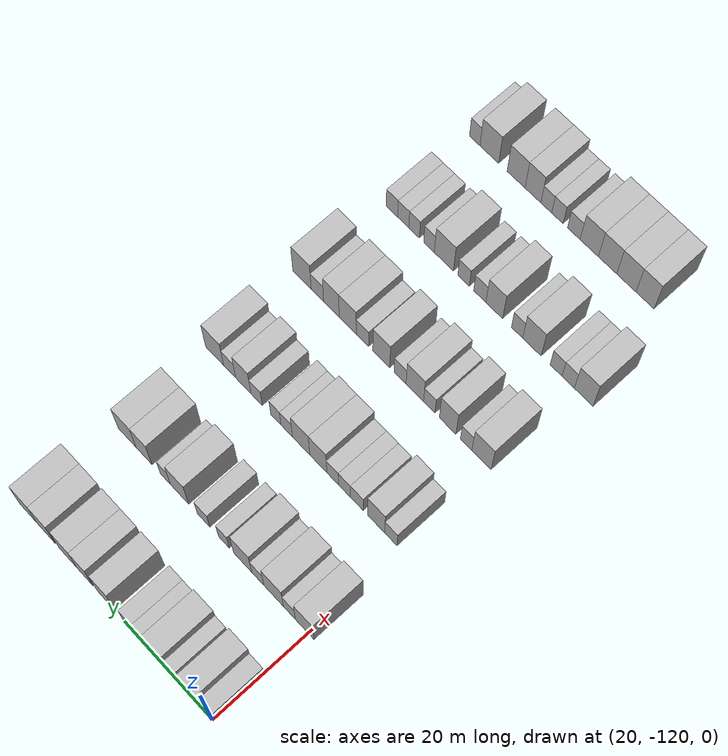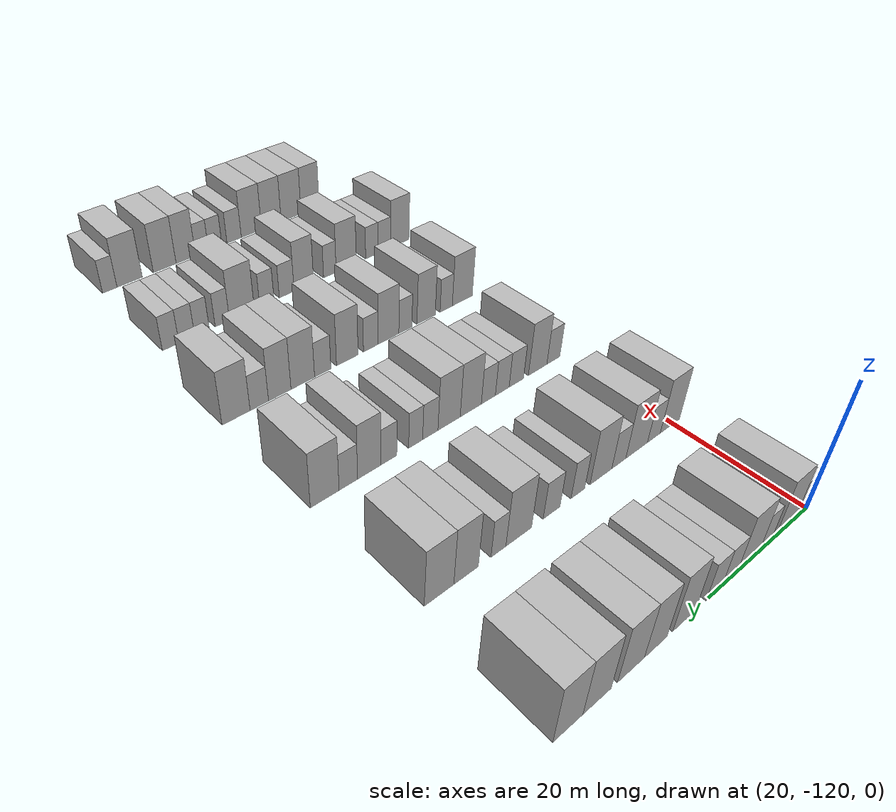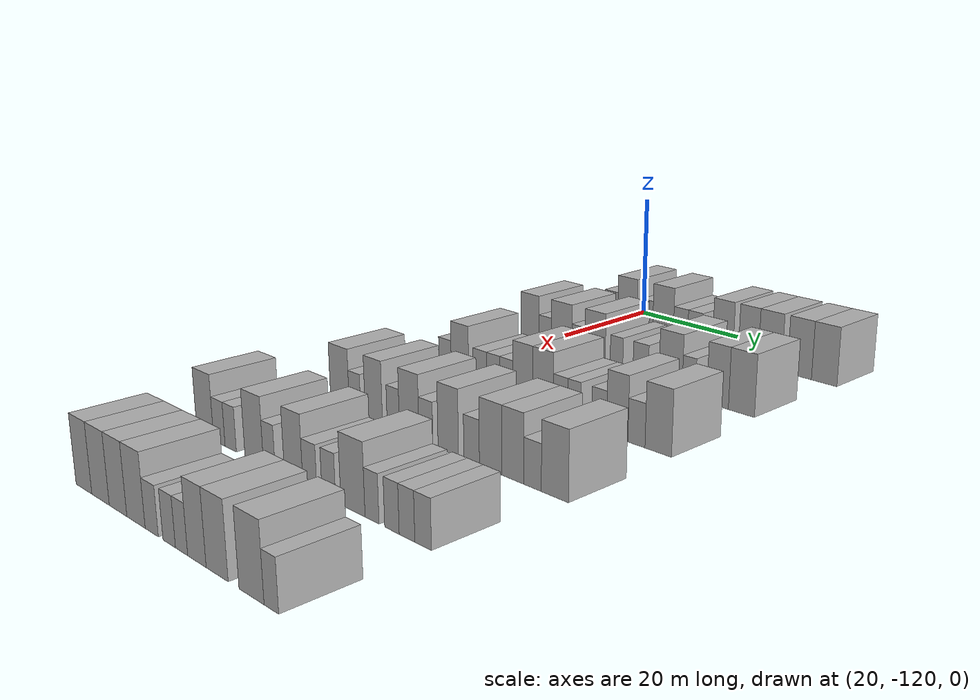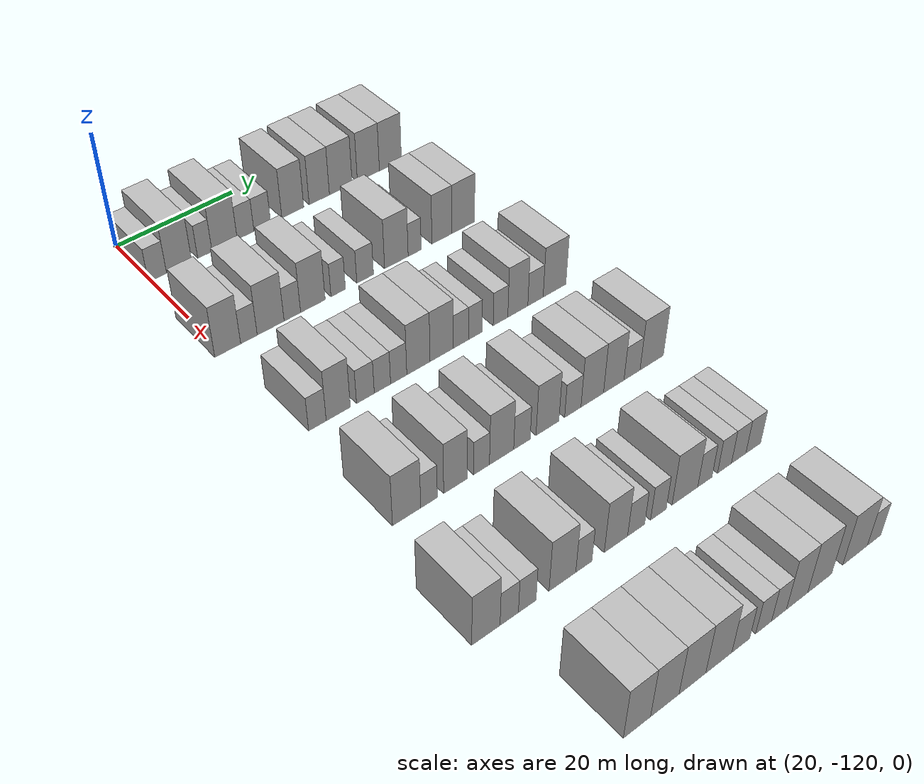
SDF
<sdf version="1.6">
 <world name="default">
  <model name="building_60">
   <static>1</static>
   <pose>25.0000 -118.9423 0 0.000000 0.000000 0.000000</pose>
   <link name="link">
    <pose>0 0 3.00 0 0 0</pose>
    <collision name="collision"><geometry><box><size>10.0000 2.9882 6.0000</size></box></geometry></collision>
    <visual name="visual">
     <cast_shadows>0</cast_shadows>
     <geometry><box><size>10.0000 2.9882 6.0000</size></box></geometry>
     <material>
      <script>
       <uri>model://HANNAS_wall/materials/scripts</uri>
       <uri>model://HANNAS_wall/materials/textures</uri>
       <name>vrc/HANNAS_wall</name>
      </script>
     </material>
    </visual>
   </link>
  </model>
  <model name="building_61">
   <static>1</static>
   <pose>25.0000 -115.3498 0 0.000000 0.000000 0.000000</pose>
   <link name="link">
    <pose>0 0 4.50 0 0 0</pose>
    <collision name="collision"><geometry><box><size>10.0000 4.1967 9.0000</size></box></geometry></collision>
    <visual name="visual">
     <cast_shadows>0</cast_shadows>
     <geometry><box><size>10.0000 4.1967 9.0000</size></box></geometry>
     <material>
      <script>
       <uri>model://HANNAS_wall/materials/scripts</uri>
       <uri>model://HANNAS_wall/materials/textures</uri>
       <name>vrc/HANNAS_wall</name>
      </script>
     </material>
    </visual>
   </link>
  </model>
  <model name="building_62">
   <static>1</static>
   <pose>25.0000 -111.0351 0 0.000000 0.000000 0.000000</pose>
   <link name="link">
    <pose>0 0 3.00 0 0 0</pose>
    <collision name="collision"><geometry><box><size>10.0000 2.4327 6.0000</size></box></geometry></collision>
    <visual name="visual">
     <cast_shadows>0</cast_shadows>
     <geometry><box><size>10.0000 2.4327 6.0000</size></box></geometry>
     <material>
      <script>
       <uri>model://HANNAS_wall/materials/scripts</uri>
       <uri>model://HANNAS_wall/materials/textures</uri>
       <name>vrc/HANNAS_wall</name>
      </script>
     </material>
    </visual>
   </link>
  </model>
  <model name="building_63">
   <static>1</static>
   <pose>25.0000 -107.6423 0 0.000000 0.000000 0.000000</pose>
   <link name="link">
    <pose>0 0 4.50 0 0 0</pose>
    <collision name="collision"><geometry><box><size>10.0000 4.3530 9.0000</size></box></geometry></collision>
    <visual name="visual">
     <cast_shadows>0</cast_shadows>
     <geometry><box><size>10.0000 4.3530 9.0000</size></box></geometry>
     <material>
      <script>
       <uri>model://HANNAS_wall/materials/scripts</uri>
       <uri>model://HANNAS_wall/materials/textures</uri>
       <name>vrc/HANNAS_wall</name>
      </script>
     </material>
    </visual>
   </link>
  </model>
  <model name="building_64">
   <static>1</static>
   <pose>25.0000 -103.9992 0 0.000000 0.000000 0.000000</pose>
   <link name="link">
    <pose>0 0 3.00 0 0 0</pose>
    <collision name="collision"><geometry><box><size>10.0000 2.9331 6.0000</size></box></geometry></collision>
    <visual name="visual">
     <cast_shadows>0</cast_shadows>
     <geometry><box><size>10.0000 2.9331 6.0000</size></box></geometry>
     <material>
      <script>
       <uri>model://HANNAS_wall/materials/scripts</uri>
       <uri>model://HANNAS_wall/materials/textures</uri>
       <name>vrc/HANNAS_wall</name>
      </script>
     </material>
    </visual>
   </link>
  </model>
  <model name="building_65">
   <static>1</static>
   <pose>25.0000 -101.0435 0 0.000000 0.000000 0.000000</pose>
   <link name="link">
    <pose>0 0 3.00 0 0 0</pose>
    <collision name="collision"><geometry><box><size>10.0000 2.9783 6.0000</size></box></geometry></collision>
    <visual name="visual">
     <cast_shadows>0</cast_shadows>
     <geometry><box><size>10.0000 2.9783 6.0000</size></box></geometry>
     <material>
      <script>
       <uri>model://HANNAS_wall/materials/scripts</uri>
       <uri>model://HANNAS_wall/materials/textures</uri>
       <name>vrc/HANNAS_wall</name>
      </script>
     </material>
    </visual>
   </link>
  </model>
  <model name="building_66">
   <static>1</static>
   <pose>25.0000 -95.5627 0 0.000000 0.000000 0.000000</pose>
   <link name="link">
    <pose>0 0 4.50 0 0 0</pose>
    <collision name="collision"><geometry><box><size>10.0000 3.9834 9.0000</size></box></geometry></collision>
    <visual name="visual">
     <cast_shadows>0</cast_shadows>
     <geometry><box><size>10.0000 3.9834 9.0000</size></box></geometry>
     <material>
      <script>
       <uri>model://HANNAS_wall/materials/scripts</uri>
       <uri>model://HANNAS_wall/materials/textures</uri>
       <name>vrc/HANNAS_wall</name>
      </script>
     </material>
    </visual>
   </link>
  </model>
  <model name="building_67">
   <static>1</static>
   <pose>25.0000 -90.6918 0 0.000000 0.000000 0.000000</pose>
   <link name="link">
    <pose>0 0 4.50 0 0 0</pose>
    <collision name="collision"><geometry><box><size>10.0000 3.7584 9.0000</size></box></geometry></collision>
    <visual name="visual">
     <cast_shadows>0</cast_shadows>
     <geometry><box><size>10.0000 3.7584 9.0000</size></box></geometry>
     <material>
      <script>
       <uri>model://HANNAS_wall/materials/scripts</uri>
       <uri>model://HANNAS_wall/materials/textures</uri>
       <name>vrc/HANNAS_wall</name>
      </script>
     </material>
    </visual>
   </link>
  </model>
  <model name="building_68">
   <static>1</static>
   <pose>25.0000 -86.6680 0 0.000000 0.000000 0.000000</pose>
   <link name="link">
    <pose>0 0 4.50 0 0 0</pose>
    <collision name="collision"><geometry><box><size>10.0000 4.2891 9.0000</size></box></geometry></collision>
    <visual name="visual">
     <cast_shadows>0</cast_shadows>
     <geometry><box><size>10.0000 4.2891 9.0000</size></box></geometry>
     <material>
      <script>
       <uri>model://HANNAS_wall/materials/scripts</uri>
       <uri>model://HANNAS_wall/materials/textures</uri>
       <name>vrc/HANNAS_wall</name>
      </script>
     </material>
    </visual>
   </link>
  </model>
  <model name="building_69">
   <static>1</static>
   <pose>25.0000 -81.3980 0 0.000000 0.000000 0.000000</pose>
   <link name="link">
    <pose>0 0 4.50 0 0 0</pose>
    <collision name="collision"><geometry><box><size>10.0000 4.2510 9.0000</size></box></geometry></collision>
    <visual name="visual">
     <cast_shadows>0</cast_shadows>
     <geometry><box><size>10.0000 4.2510 9.0000</size></box></geometry>
     <material>
      <script>
       <uri>model://HANNAS_wall/materials/scripts</uri>
       <uri>model://HANNAS_wall/materials/textures</uri>
       <name>vrc/HANNAS_wall</name>
      </script>
     </material>
    </visual>
   </link>
  </model>
  <model name="building_70">
   <static>1</static>
   <pose>25.0000 -77.1111 0 0.000000 0.000000 0.000000</pose>
   <link name="link">
    <pose>0 0 4.50 0 0 0</pose>
    <collision name="collision"><geometry><box><size>10.0000 4.3227 9.0000</size></box></geometry></collision>
    <visual name="visual">
     <cast_shadows>0</cast_shadows>
     <geometry><box><size>10.0000 4.3227 9.0000</size></box></geometry>
     <material>
      <script>
       <uri>model://HANNAS_wall/materials/scripts</uri>
       <uri>model://HANNAS_wall/materials/textures</uri>
       <name>vrc/HANNAS_wall</name>
      </script>
     </material>
    </visual>
   </link>
  </model>
  <model name="building_233">
   <static>1</static>
   <pose>44.0000 -119.2476 0 0.000000 0.000000 0.000000</pose>
   <link name="link">
    <pose>0 0 4.50 0 0 0</pose>
    <collision name="collision"><geometry><box><size>10.0000 4.1299 9.0000</size></box></geometry></collision>
    <visual name="visual">
     <cast_shadows>0</cast_shadows>
     <geometry><box><size>10.0000 4.1299 9.0000</size></box></geometry>
     <material>
      <script>
       <uri>model://HANNAS_wall/materials/scripts</uri>
       <uri>model://HANNAS_wall/materials/textures</uri>
       <name>vrc/HANNAS_wall</name>
      </script>
     </material>
    </visual>
   </link>
  </model>
  <model name="building_234">
   <static>1</static>
   <pose>44.0000 -115.8389 0 0.000000 0.000000 0.000000</pose>
   <link name="link">
    <pose>0 0 3.00 0 0 0</pose>
    <collision name="collision"><geometry><box><size>10.0000 2.6875 6.0000</size></box></geometry></collision>
    <visual name="visual">
     <cast_shadows>0</cast_shadows>
     <geometry><box><size>10.0000 2.6875 6.0000</size></box></geometry>
     <material>
      <script>
       <uri>model://HANNAS_wall/materials/scripts</uri>
       <uri>model://HANNAS_wall/materials/textures</uri>
       <name>vrc/HANNAS_wall</name>
      </script>
     </material>
    </visual>
   </link>
  </model>
  <model name="building_235">
   <static>1</static>
   <pose>44.0000 -112.2804 0 0.000000 0.000000 0.000000</pose>
   <link name="link">
    <pose>0 0 4.50 0 0 0</pose>
    <collision name="collision"><geometry><box><size>10.0000 4.4294 9.0000</size></box></geometry></collision>
    <visual name="visual">
     <cast_shadows>0</cast_shadows>
     <geometry><box><size>10.0000 4.4294 9.0000</size></box></geometry>
     <material>
      <script>
       <uri>model://HANNAS_wall/materials/scripts</uri>
       <uri>model://HANNAS_wall/materials/textures</uri>
       <name>vrc/HANNAS_wall</name>
      </script>
     </material>
    </visual>
   </link>
  </model>
  <model name="building_236">
   <static>1</static>
   <pose>44.0000 -108.6815 0 0.000000 0.000000 0.000000</pose>
   <link name="link">
    <pose>0 0 3.00 0 0 0</pose>
    <collision name="collision"><geometry><box><size>10.0000 2.7684 6.0000</size></box></geometry></collision>
    <visual name="visual">
     <cast_shadows>0</cast_shadows>
     <geometry><box><size>10.0000 2.7684 6.0000</size></box></geometry>
     <material>
      <script>
       <uri>model://HANNAS_wall/materials/scripts</uri>
       <uri>model://HANNAS_wall/materials/textures</uri>
       <name>vrc/HANNAS_wall</name>
      </script>
     </material>
    </visual>
   </link>
  </model>
  <model name="building_237">
   <static>1</static>
   <pose>44.0000 -105.2041 0 0.000000 0.000000 0.000000</pose>
   <link name="link">
    <pose>0 0 4.50 0 0 0</pose>
    <collision name="collision"><geometry><box><size>10.0000 4.1864 9.0000</size></box></geometry></collision>
    <visual name="visual">
     <cast_shadows>0</cast_shadows>
     <geometry><box><size>10.0000 4.1864 9.0000</size></box></geometry>
     <material>
      <script>
       <uri>model://HANNAS_wall/materials/scripts</uri>
       <uri>model://HANNAS_wall/materials/textures</uri>
       <name>vrc/HANNAS_wall</name>
      </script>
     </material>
    </visual>
   </link>
  </model>
  <model name="building_238">
   <static>1</static>
   <pose>44.0000 -100.8561 0 0.000000 0.000000 0.000000</pose>
   <link name="link">
    <pose>0 0 3.00 0 0 0</pose>
    <collision name="collision"><geometry><box><size>10.0000 2.5096 6.0000</size></box></geometry></collision>
    <visual name="visual">
     <cast_shadows>0</cast_shadows>
     <geometry><box><size>10.0000 2.5096 6.0000</size></box></geometry>
     <material>
      <script>
       <uri>model://HANNAS_wall/materials/scripts</uri>
       <uri>model://HANNAS_wall/materials/textures</uri>
       <name>vrc/HANNAS_wall</name>
      </script>
     </material>
    </visual>
   </link>
  </model>
  <model name="building_239">
   <static>1</static>
   <pose>44.0000 -96.1225 0 0.000000 0.000000 0.000000</pose>
   <link name="link">
    <pose>0 0 3.00 0 0 0</pose>
    <collision name="collision"><geometry><box><size>10.0000 2.9574 6.0000</size></box></geometry></collision>
    <visual name="visual">
     <cast_shadows>0</cast_shadows>
     <geometry><box><size>10.0000 2.9574 6.0000</size></box></geometry>
     <material>
      <script>
       <uri>model://HANNAS_wall/materials/scripts</uri>
       <uri>model://HANNAS_wall/materials/textures</uri>
       <name>vrc/HANNAS_wall</name>
      </script>
     </material>
    </visual>
   </link>
  </model>
  <model name="building_240">
   <static>1</static>
   <pose>44.0000 -90.5003 0 0.000000 0.000000 0.000000</pose>
   <link name="link">
    <pose>0 0 4.50 0 0 0</pose>
    <collision name="collision"><geometry><box><size>10.0000 4.2869 9.0000</size></box></geometry></collision>
    <visual name="visual">
     <cast_shadows>0</cast_shadows>
     <geometry><box><size>10.0000 4.2869 9.0000</size></box></geometry>
     <material>
      <script>
       <uri>model://HANNAS_wall/materials/scripts</uri>
       <uri>model://HANNAS_wall/materials/textures</uri>
       <name>vrc/HANNAS_wall</name>
      </script>
     </material>
    </visual>
   </link>
  </model>
  <model name="building_241">
   <static>1</static>
   <pose>44.0000 -87.1545 0 0.000000 0.000000 0.000000</pose>
   <link name="link">
    <pose>0 0 3.00 0 0 0</pose>
    <collision name="collision"><geometry><box><size>10.0000 2.4048 6.0000</size></box></geometry></collision>
    <visual name="visual">
     <cast_shadows>0</cast_shadows>
     <geometry><box><size>10.0000 2.4048 6.0000</size></box></geometry>
     <material>
      <script>
       <uri>model://HANNAS_wall/materials/scripts</uri>
       <uri>model://HANNAS_wall/materials/textures</uri>
       <name>vrc/HANNAS_wall</name>
      </script>
     </material>
    </visual>
   </link>
  </model>
  <model name="building_242">
   <static>1</static>
   <pose>44.0000 -82.0714 0 0.000000 0.000000 0.000000</pose>
   <link name="link">
    <pose>0 0 4.50 0 0 0</pose>
    <collision name="collision"><geometry><box><size>10.0000 3.7615 9.0000</size></box></geometry></collision>
    <visual name="visual">
     <cast_shadows>0</cast_shadows>
     <geometry><box><size>10.0000 3.7615 9.0000</size></box></geometry>
     <material>
      <script>
       <uri>model://HANNAS_wall/materials/scripts</uri>
       <uri>model://HANNAS_wall/materials/textures</uri>
       <name>vrc/HANNAS_wall</name>
      </script>
     </material>
    </visual>
   </link>
  </model>
  <model name="building_243">
   <static>1</static>
   <pose>44.0000 -78.0069 0 0.000000 0.000000 0.000000</pose>
   <link name="link">
    <pose>0 0 4.50 0 0 0</pose>
    <collision name="collision"><geometry><box><size>10.0000 4.3674 9.0000</size></box></geometry></collision>
    <visual name="visual">
     <cast_shadows>0</cast_shadows>
     <geometry><box><size>10.0000 4.3674 9.0000</size></box></geometry>
     <material>
      <script>
       <uri>model://HANNAS_wall/materials/scripts</uri>
       <uri>model://HANNAS_wall/materials/textures</uri>
       <name>vrc/HANNAS_wall</name>
      </script>
     </material>
    </visual>
   </link>
  </model>
  <model name="building_408">
   <static>1</static>
   <pose>63.0000 -117.8348 0 0.000000 0.000000 0.000000</pose>
   <link name="link">
    <pose>0 0 3.00 0 0 0</pose>
    <collision name="collision"><geometry><box><size>10.0000 2.7598 6.0000</size></box></geometry></collision>
    <visual name="visual">
     <cast_shadows>0</cast_shadows>
     <geometry><box><size>10.0000 2.7598 6.0000</size></box></geometry>
     <material>
      <script>
       <uri>model://HANNAS_wall/materials/scripts</uri>
       <uri>model://HANNAS_wall/materials/textures</uri>
       <name>vrc/HANNAS_wall</name>
      </script>
     </material>
    </visual>
   </link>
  </model>
  <model name="building_409">
   <static>1</static>
   <pose>63.0000 -114.5380 0 0.000000 0.000000 0.000000</pose>
   <link name="link">
    <pose>0 0 4.50 0 0 0</pose>
    <collision name="collision"><geometry><box><size>10.0000 3.8340 9.0000</size></box></geometry></collision>
    <visual name="visual">
     <cast_shadows>0</cast_shadows>
     <geometry><box><size>10.0000 3.8340 9.0000</size></box></geometry>
     <material>
      <script>
       <uri>model://HANNAS_wall/materials/scripts</uri>
       <uri>model://HANNAS_wall/materials/textures</uri>
       <name>vrc/HANNAS_wall</name>
      </script>
     </material>
    </visual>
   </link>
  </model>
  <model name="building_410">
   <static>1</static>
   <pose>63.0000 -110.1778 0 0.000000 0.000000 0.000000</pose>
   <link name="link">
    <pose>0 0 3.00 0 0 0</pose>
    <collision name="collision"><geometry><box><size>10.0000 2.8863 6.0000</size></box></geometry></collision>
    <visual name="visual">
     <cast_shadows>0</cast_shadows>
     <geometry><box><size>10.0000 2.8863 6.0000</size></box></geometry>
     <material>
      <script>
       <uri>model://HANNAS_wall/materials/scripts</uri>
       <uri>model://HANNAS_wall/materials/textures</uri>
       <name>vrc/HANNAS_wall</name>
      </script>
     </material>
    </visual>
   </link>
  </model>
  <model name="building_411">
   <static>1</static>
   <pose>63.0000 -107.3876 0 0.000000 0.000000 0.000000</pose>
   <link name="link">
    <pose>0 0 3.00 0 0 0</pose>
    <collision name="collision"><geometry><box><size>10.0000 2.6941 6.0000</size></box></geometry></collision>
    <visual name="visual">
     <cast_shadows>0</cast_shadows>
     <geometry><box><size>10.0000 2.6941 6.0000</size></box></geometry>
     <material>
      <script>
       <uri>model://HANNAS_wall/materials/scripts</uri>
       <uri>model://HANNAS_wall/materials/textures</uri>
       <name>vrc/HANNAS_wall</name>
      </script>
     </material>
    </visual>
   </link>
  </model>
  <model name="building_412">
   <static>1</static>
   <pose>63.0000 -104.6895 0 0.000000 0.000000 0.000000</pose>
   <link name="link">
    <pose>0 0 3.00 0 0 0</pose>
    <collision name="collision"><geometry><box><size>10.0000 2.7020 6.0000</size></box></geometry></collision>
    <visual name="visual">
     <cast_shadows>0</cast_shadows>
     <geometry><box><size>10.0000 2.7020 6.0000</size></box></geometry>
     <material>
      <script>
       <uri>model://HANNAS_wall/materials/scripts</uri>
       <uri>model://HANNAS_wall/materials/textures</uri>
       <name>vrc/HANNAS_wall</name>
      </script>
     </material>
    </visual>
   </link>
  </model>
  <model name="building_413">
   <static>1</static>
   <pose>63.0000 -101.3658 0 0.000000 0.000000 0.000000</pose>
   <link name="link">
    <pose>0 0 4.50 0 0 0</pose>
    <collision name="collision"><geometry><box><size>10.0000 3.9454 9.0000</size></box></geometry></collision>
    <visual name="visual">
     <cast_shadows>0</cast_shadows>
     <geometry><box><size>10.0000 3.9454 9.0000</size></box></geometry>
     <material>
      <script>
       <uri>model://HANNAS_wall/materials/scripts</uri>
       <uri>model://HANNAS_wall/materials/textures</uri>
       <name>vrc/HANNAS_wall</name>
      </script>
     </material>
    </visual>
   </link>
  </model>
  <model name="building_414">
   <static>1</static>
   <pose>63.0000 -97.3830 0 0.000000 0.000000 0.000000</pose>
   <link name="link">
    <pose>0 0 4.50 0 0 0</pose>
    <collision name="collision"><geometry><box><size>10.0000 4.0202 9.0000</size></box></geometry></collision>
    <visual name="visual">
     <cast_shadows>0</cast_shadows>
     <geometry><box><size>10.0000 4.0202 9.0000</size></box></geometry>
     <material>
      <script>
       <uri>model://HANNAS_wall/materials/scripts</uri>
       <uri>model://HANNAS_wall/materials/textures</uri>
       <name>vrc/HANNAS_wall</name>
      </script>
     </material>
    </visual>
   </link>
  </model>
  <model name="building_415">
   <static>1</static>
   <pose>63.0000 -94.0296 0 0.000000 0.000000 0.000000</pose>
   <link name="link">
    <pose>0 0 3.00 0 0 0</pose>
    <collision name="collision"><geometry><box><size>10.0000 2.6865 6.0000</size></box></geometry></collision>
    <visual name="visual">
     <cast_shadows>0</cast_shadows>
     <geometry><box><size>10.0000 2.6865 6.0000</size></box></geometry>
     <material>
      <script>
       <uri>model://HANNAS_wall/materials/scripts</uri>
       <uri>model://HANNAS_wall/materials/textures</uri>
       <name>vrc/HANNAS_wall</name>
      </script>
     </material>
    </visual>
   </link>
  </model>
  <model name="building_416">
   <static>1</static>
   <pose>63.0000 -91.4849 0 0.000000 0.000000 0.000000</pose>
   <link name="link">
    <pose>0 0 3.00 0 0 0</pose>
    <collision name="collision"><geometry><box><size>10.0000 2.4030 6.0000</size></box></geometry></collision>
    <visual name="visual">
     <cast_shadows>0</cast_shadows>
     <geometry><box><size>10.0000 2.4030 6.0000</size></box></geometry>
     <material>
      <script>
       <uri>model://HANNAS_wall/materials/scripts</uri>
       <uri>model://HANNAS_wall/materials/textures</uri>
       <name>vrc/HANNAS_wall</name>
      </script>
     </material>
    </visual>
   </link>
  </model>
  <model name="building_417">
   <static>1</static>
   <pose>63.0000 -86.9503 0 0.000000 0.000000 0.000000</pose>
   <link name="link">
    <pose>0 0 3.00 0 0 0</pose>
    <collision name="collision"><geometry><box><size>10.0000 2.6662 6.0000</size></box></geometry></collision>
    <visual name="visual">
     <cast_shadows>0</cast_shadows>
     <geometry><box><size>10.0000 2.6662 6.0000</size></box></geometry>
     <material>
      <script>
       <uri>model://HANNAS_wall/materials/scripts</uri>
       <uri>model://HANNAS_wall/materials/textures</uri>
       <name>vrc/HANNAS_wall</name>
      </script>
     </material>
    </visual>
   </link>
  </model>
  <model name="building_418">
   <static>1</static>
   <pose>63.0000 -83.7740 0 0.000000 0.000000 0.000000</pose>
   <link name="link">
    <pose>0 0 4.50 0 0 0</pose>
    <collision name="collision"><geometry><box><size>10.0000 3.6866 9.0000</size></box></geometry></collision>
    <visual name="visual">
     <cast_shadows>0</cast_shadows>
     <geometry><box><size>10.0000 3.6866 9.0000</size></box></geometry>
     <material>
      <script>
       <uri>model://HANNAS_wall/materials/scripts</uri>
       <uri>model://HANNAS_wall/materials/textures</uri>
       <name>vrc/HANNAS_wall</name>
      </script>
     </material>
    </visual>
   </link>
  </model>
  <model name="building_419">
   <static>1</static>
   <pose>63.0000 -80.4919 0 0.000000 0.000000 0.000000</pose>
   <link name="link">
    <pose>0 0 3.00 0 0 0</pose>
    <collision name="collision"><geometry><box><size>10.0000 2.8776 6.0000</size></box></geometry></collision>
    <visual name="visual">
     <cast_shadows>0</cast_shadows>
     <geometry><box><size>10.0000 2.8776 6.0000</size></box></geometry>
     <material>
      <script>
       <uri>model://HANNAS_wall/materials/scripts</uri>
       <uri>model://HANNAS_wall/materials/textures</uri>
       <name>vrc/HANNAS_wall</name>
      </script>
     </material>
    </visual>
   </link>
  </model>
  <model name="building_420">
   <static>1</static>
   <pose>63.0000 -76.8876 0 0.000000 0.000000 0.000000</pose>
   <link name="link">
    <pose>0 0 4.50 0 0 0</pose>
    <collision name="collision"><geometry><box><size>10.0000 4.3311 9.0000</size></box></geometry></collision>
    <visual name="visual">
     <cast_shadows>0</cast_shadows>
     <geometry><box><size>10.0000 4.3311 9.0000</size></box></geometry>
     <material>
      <script>
       <uri>model://HANNAS_wall/materials/scripts</uri>
       <uri>model://HANNAS_wall/materials/textures</uri>
       <name>vrc/HANNAS_wall</name>
      </script>
     </material>
    </visual>
   </link>
  </model>
  <model name="building_586">
   <static>1</static>
   <pose>82.0000 -118.0923 0 0.000000 0.000000 0.000000</pose>
   <link name="link">
    <pose>0 0 4.50 0 0 0</pose>
    <collision name="collision"><geometry><box><size>10.0000 4.3048 9.0000</size></box></geometry></collision>
    <visual name="visual">
     <cast_shadows>0</cast_shadows>
     <geometry><box><size>10.0000 4.3048 9.0000</size></box></geometry>
     <material>
      <script>
       <uri>model://HANNAS_wall/materials/scripts</uri>
       <uri>model://HANNAS_wall/materials/textures</uri>
       <name>vrc/HANNAS_wall</name>
      </script>
     </material>
    </visual>
   </link>
  </model>
  <model name="building_587">
   <static>1</static>
   <pose>82.0000 -114.6510 0 0.000000 0.000000 0.000000</pose>
   <link name="link">
    <pose>0 0 3.00 0 0 0</pose>
    <collision name="collision"><geometry><box><size>10.0000 2.5776 6.0000</size></box></geometry></collision>
    <visual name="visual">
     <cast_shadows>0</cast_shadows>
     <geometry><box><size>10.0000 2.5776 6.0000</size></box></geometry>
     <material>
      <script>
       <uri>model://HANNAS_wall/materials/scripts</uri>
       <uri>model://HANNAS_wall/materials/textures</uri>
       <name>vrc/HANNAS_wall</name>
      </script>
     </material>
    </visual>
   </link>
  </model>
  <model name="building_588">
   <static>1</static>
   <pose>82.0000 -110.4866 0 0.000000 0.000000 0.000000</pose>
   <link name="link">
    <pose>0 0 4.50 0 0 0</pose>
    <collision name="collision"><geometry><box><size>10.0000 3.7513 9.0000</size></box></geometry></collision>
    <visual name="visual">
     <cast_shadows>0</cast_shadows>
     <geometry><box><size>10.0000 3.7513 9.0000</size></box></geometry>
     <material>
      <script>
       <uri>model://HANNAS_wall/materials/scripts</uri>
       <uri>model://HANNAS_wall/materials/textures</uri>
       <name>vrc/HANNAS_wall</name>
      </script>
     </material>
    </visual>
   </link>
  </model>
  <model name="building_589">
   <static>1</static>
   <pose>82.0000 -106.3163 0 0.000000 0.000000 0.000000</pose>
   <link name="link">
    <pose>0 0 3.00 0 0 0</pose>
    <collision name="collision"><geometry><box><size>10.0000 2.5893 6.0000</size></box></geometry></collision>
    <visual name="visual">
     <cast_shadows>0</cast_shadows>
     <geometry><box><size>10.0000 2.5893 6.0000</size></box></geometry>
     <material>
      <script>
       <uri>model://HANNAS_wall/materials/scripts</uri>
       <uri>model://HANNAS_wall/materials/textures</uri>
       <name>vrc/HANNAS_wall</name>
      </script>
     </material>
    </visual>
   </link>
  </model>
  <model name="building_590">
   <static>1</static>
   <pose>82.0000 -103.0176 0 0.000000 0.000000 0.000000</pose>
   <link name="link">
    <pose>0 0 4.50 0 0 0</pose>
    <collision name="collision"><geometry><box><size>10.0000 4.0079 9.0000</size></box></geometry></collision>
    <visual name="visual">
     <cast_shadows>0</cast_shadows>
     <geometry><box><size>10.0000 4.0079 9.0000</size></box></geometry>
     <material>
      <script>
       <uri>model://HANNAS_wall/materials/scripts</uri>
       <uri>model://HANNAS_wall/materials/textures</uri>
       <name>vrc/HANNAS_wall</name>
      </script>
     </material>
    </visual>
   </link>
  </model>
  <model name="building_591">
   <static>1</static>
   <pose>82.0000 -99.6317 0 0.000000 0.000000 0.000000</pose>
   <link name="link">
    <pose>0 0 3.00 0 0 0</pose>
    <collision name="collision"><geometry><box><size>10.0000 2.7639 6.0000</size></box></geometry></collision>
    <visual name="visual">
     <cast_shadows>0</cast_shadows>
     <geometry><box><size>10.0000 2.7639 6.0000</size></box></geometry>
     <material>
      <script>
       <uri>model://HANNAS_wall/materials/scripts</uri>
       <uri>model://HANNAS_wall/materials/textures</uri>
       <name>vrc/HANNAS_wall</name>
      </script>
     </material>
    </visual>
   </link>
  </model>
  <model name="building_592">
   <static>1</static>
   <pose>82.0000 -95.2853 0 0.000000 0.000000 0.000000</pose>
   <link name="link">
    <pose>0 0 4.50 0 0 0</pose>
    <collision name="collision"><geometry><box><size>10.0000 3.9289 9.0000</size></box></geometry></collision>
    <visual name="visual">
     <cast_shadows>0</cast_shadows>
     <geometry><box><size>10.0000 3.9289 9.0000</size></box></geometry>
     <material>
      <script>
       <uri>model://HANNAS_wall/materials/scripts</uri>
       <uri>model://HANNAS_wall/materials/textures</uri>
       <name>vrc/HANNAS_wall</name>
      </script>
     </material>
    </visual>
   </link>
  </model>
  <model name="building_593">
   <static>1</static>
   <pose>82.0000 -90.8881 0 0.000000 0.000000 0.000000</pose>
   <link name="link">
    <pose>0 0 3.00 0 0 0</pose>
    <collision name="collision"><geometry><box><size>10.0000 2.8655 6.0000</size></box></geometry></collision>
    <visual name="visual">
     <cast_shadows>0</cast_shadows>
     <geometry><box><size>10.0000 2.8655 6.0000</size></box></geometry>
     <material>
      <script>
       <uri>model://HANNAS_wall/materials/scripts</uri>
       <uri>model://HANNAS_wall/materials/textures</uri>
       <name>vrc/HANNAS_wall</name>
      </script>
     </material>
    </visual>
   </link>
  </model>
  <model name="building_594">
   <static>1</static>
   <pose>82.0000 -87.4365 0 0.000000 0.000000 0.000000</pose>
   <link name="link">
    <pose>0 0 4.50 0 0 0</pose>
    <collision name="collision"><geometry><box><size>10.0000 4.0377 9.0000</size></box></geometry></collision>
    <visual name="visual">
     <cast_shadows>0</cast_shadows>
     <geometry><box><size>10.0000 4.0377 9.0000</size></box></geometry>
     <material>
      <script>
       <uri>model://HANNAS_wall/materials/scripts</uri>
       <uri>model://HANNAS_wall/materials/textures</uri>
       <name>vrc/HANNAS_wall</name>
      </script>
     </material>
    </visual>
   </link>
  </model>
  <model name="building_595">
   <static>1</static>
   <pose>82.0000 -83.5544 0 0.000000 0.000000 0.000000</pose>
   <link name="link">
    <pose>0 0 4.50 0 0 0</pose>
    <collision name="collision"><geometry><box><size>10.0000 3.7264 9.0000</size></box></geometry></collision>
    <visual name="visual">
     <cast_shadows>0</cast_shadows>
     <geometry><box><size>10.0000 3.7264 9.0000</size></box></geometry>
     <material>
      <script>
       <uri>model://HANNAS_wall/materials/scripts</uri>
       <uri>model://HANNAS_wall/materials/textures</uri>
       <name>vrc/HANNAS_wall</name>
      </script>
     </material>
    </visual>
   </link>
  </model>
  <model name="building_596">
   <static>1</static>
   <pose>82.0000 -80.2047 0 0.000000 0.000000 0.000000</pose>
   <link name="link">
    <pose>0 0 3.00 0 0 0</pose>
    <collision name="collision"><geometry><box><size>10.0000 2.9730 6.0000</size></box></geometry></collision>
    <visual name="visual">
     <cast_shadows>0</cast_shadows>
     <geometry><box><size>10.0000 2.9730 6.0000</size></box></geometry>
     <material>
      <script>
       <uri>model://HANNAS_wall/materials/scripts</uri>
       <uri>model://HANNAS_wall/materials/textures</uri>
       <name>vrc/HANNAS_wall</name>
      </script>
     </material>
    </visual>
   </link>
  </model>
  <model name="building_597">
   <static>1</static>
   <pose>82.0000 -76.5198 0 0.000000 0.000000 0.000000</pose>
   <link name="link">
    <pose>0 0 4.50 0 0 0</pose>
    <collision name="collision"><geometry><box><size>10.0000 4.3967 9.0000</size></box></geometry></collision>
    <visual name="visual">
     <cast_shadows>0</cast_shadows>
     <geometry><box><size>10.0000 4.3967 9.0000</size></box></geometry>
     <material>
      <script>
       <uri>model://HANNAS_wall/materials/scripts</uri>
       <uri>model://HANNAS_wall/materials/textures</uri>
       <name>vrc/HANNAS_wall</name>
      </script>
     </material>
    </visual>
   </link>
  </model>
  <model name="building_756">
   <static>1</static>
   <pose>101.0000 -121.6002 0 0.000000 0.000000 0.000000</pose>
   <link name="link">
    <pose>0 0 4.50 0 0 0</pose>
    <collision name="collision"><geometry><box><size>10.0000 4.1466 9.0000</size></box></geometry></collision>
    <visual name="visual">
     <cast_shadows>0</cast_shadows>
     <geometry><box><size>10.0000 4.1466 9.0000</size></box></geometry>
     <material>
      <script>
       <uri>model://HANNAS_wall/materials/scripts</uri>
       <uri>model://HANNAS_wall/materials/textures</uri>
       <name>vrc/HANNAS_wall</name>
      </script>
     </material>
    </visual>
   </link>
  </model>
  <model name="building_757">
   <static>1</static>
   <pose>101.0000 -118.1508 0 0.000000 0.000000 0.000000</pose>
   <link name="link">
    <pose>0 0 3.00 0 0 0</pose>
    <collision name="collision"><geometry><box><size>10.0000 2.7521 6.0000</size></box></geometry></collision>
    <visual name="visual">
     <cast_shadows>0</cast_shadows>
     <geometry><box><size>10.0000 2.7521 6.0000</size></box></geometry>
     <material>
      <script>
       <uri>model://HANNAS_wall/materials/scripts</uri>
       <uri>model://HANNAS_wall/materials/textures</uri>
       <name>vrc/HANNAS_wall</name>
      </script>
     </material>
    </visual>
   </link>
  </model>
  <model name="building_758">
   <static>1</static>
   <pose>101.0000 -115.4415 0 0.000000 0.000000 0.000000</pose>
   <link name="link">
    <pose>0 0 3.00 0 0 0</pose>
    <collision name="collision"><geometry><box><size>10.0000 2.6666 6.0000</size></box></geometry></collision>
    <visual name="visual">
     <cast_shadows>0</cast_shadows>
     <geometry><box><size>10.0000 2.6666 6.0000</size></box></geometry>
     <material>
      <script>
       <uri>model://HANNAS_wall/materials/scripts</uri>
       <uri>model://HANNAS_wall/materials/textures</uri>
       <name>vrc/HANNAS_wall</name>
      </script>
     </material>
    </visual>
   </link>
  </model>
  <model name="building_759">
   <static>1</static>
   <pose>101.0000 -110.0188 0 0.000000 0.000000 0.000000</pose>
   <link name="link">
    <pose>0 0 4.50 0 0 0</pose>
    <collision name="collision"><geometry><box><size>10.0000 4.1788 9.0000</size></box></geometry></collision>
    <visual name="visual">
     <cast_shadows>0</cast_shadows>
     <geometry><box><size>10.0000 4.1788 9.0000</size></box></geometry>
     <material>
      <script>
       <uri>model://HANNAS_wall/materials/scripts</uri>
       <uri>model://HANNAS_wall/materials/textures</uri>
       <name>vrc/HANNAS_wall</name>
      </script>
     </material>
    </visual>
   </link>
  </model>
  <model name="building_760">
   <static>1</static>
   <pose>101.0000 -106.6468 0 0.000000 0.000000 0.000000</pose>
   <link name="link">
    <pose>0 0 3.00 0 0 0</pose>
    <collision name="collision"><geometry><box><size>10.0000 2.5653 6.0000</size></box></geometry></collision>
    <visual name="visual">
     <cast_shadows>0</cast_shadows>
     <geometry><box><size>10.0000 2.5653 6.0000</size></box></geometry>
     <material>
      <script>
       <uri>model://HANNAS_wall/materials/scripts</uri>
       <uri>model://HANNAS_wall/materials/textures</uri>
       <name>vrc/HANNAS_wall</name>
      </script>
     </material>
    </visual>
   </link>
  </model>
  <model name="building_761">
   <static>1</static>
   <pose>101.0000 -101.4476 0 0.000000 0.000000 0.000000</pose>
   <link name="link">
    <pose>0 0 4.50 0 0 0</pose>
    <collision name="collision"><geometry><box><size>10.0000 3.8330 9.0000</size></box></geometry></collision>
    <visual name="visual">
     <cast_shadows>0</cast_shadows>
     <geometry><box><size>10.0000 3.8330 9.0000</size></box></geometry>
     <material>
      <script>
       <uri>model://HANNAS_wall/materials/scripts</uri>
       <uri>model://HANNAS_wall/materials/textures</uri>
       <name>vrc/HANNAS_wall</name>
      </script>
     </material>
    </visual>
   </link>
  </model>
  <model name="building_762">
   <static>1</static>
   <pose>101.0000 -98.1115 0 0.000000 0.000000 0.000000</pose>
   <link name="link">
    <pose>0 0 3.00 0 0 0</pose>
    <collision name="collision"><geometry><box><size>10.0000 2.8393 6.0000</size></box></geometry></collision>
    <visual name="visual">
     <cast_shadows>0</cast_shadows>
     <geometry><box><size>10.0000 2.8393 6.0000</size></box></geometry>
     <material>
      <script>
       <uri>model://HANNAS_wall/materials/scripts</uri>
       <uri>model://HANNAS_wall/materials/textures</uri>
       <name>vrc/HANNAS_wall</name>
      </script>
     </material>
    </visual>
   </link>
  </model>
  <model name="building_763">
   <static>1</static>
   <pose>101.0000 -94.3566 0 0.000000 0.000000 0.000000</pose>
   <link name="link">
    <pose>0 0 3.00 0 0 0</pose>
    <collision name="collision"><geometry><box><size>10.0000 2.6706 6.0000</size></box></geometry></collision>
    <visual name="visual">
     <cast_shadows>0</cast_shadows>
     <geometry><box><size>10.0000 2.6706 6.0000</size></box></geometry>
     <material>
      <script>
       <uri>model://HANNAS_wall/materials/scripts</uri>
       <uri>model://HANNAS_wall/materials/textures</uri>
       <name>vrc/HANNAS_wall</name>
      </script>
     </material>
    </visual>
   </link>
  </model>
  <model name="building_764">
   <static>1</static>
   <pose>101.0000 -89.7738 0 0.000000 0.000000 0.000000</pose>
   <link name="link">
    <pose>0 0 4.50 0 0 0</pose>
    <collision name="collision"><geometry><box><size>10.0000 4.4949 9.0000</size></box></geometry></collision>
    <visual name="visual">
     <cast_shadows>0</cast_shadows>
     <geometry><box><size>10.0000 4.4949 9.0000</size></box></geometry>
     <material>
      <script>
       <uri>model://HANNAS_wall/materials/scripts</uri>
       <uri>model://HANNAS_wall/materials/textures</uri>
       <name>vrc/HANNAS_wall</name>
      </script>
     </material>
    </visual>
   </link>
  </model>
  <model name="building_765">
   <static>1</static>
   <pose>101.0000 -86.2646 0 0.000000 0.000000 0.000000</pose>
   <link name="link">
    <pose>0 0 3.00 0 0 0</pose>
    <collision name="collision"><geometry><box><size>10.0000 2.5235 6.0000</size></box></geometry></collision>
    <visual name="visual">
     <cast_shadows>0</cast_shadows>
     <geometry><box><size>10.0000 2.5235 6.0000</size></box></geometry>
     <material>
      <script>
       <uri>model://HANNAS_wall/materials/scripts</uri>
       <uri>model://HANNAS_wall/materials/textures</uri>
       <name>vrc/HANNAS_wall</name>
      </script>
     </material>
    </visual>
   </link>
  </model>
  <model name="building_766">
   <static>1</static>
   <pose>101.0000 -82.7427 0 0.000000 0.000000 0.000000</pose>
   <link name="link">
    <pose>0 0 3.00 0 0 0</pose>
    <collision name="collision"><geometry><box><size>10.0000 2.5204 6.0000</size></box></geometry></collision>
    <visual name="visual">
     <cast_shadows>0</cast_shadows>
     <geometry><box><size>10.0000 2.5204 6.0000</size></box></geometry>
     <material>
      <script>
       <uri>model://HANNAS_wall/materials/scripts</uri>
       <uri>model://HANNAS_wall/materials/textures</uri>
       <name>vrc/HANNAS_wall</name>
      </script>
     </material>
    </visual>
   </link>
  </model>
  <model name="building_767">
   <static>1</static>
   <pose>101.0000 -80.1546 0 0.000000 0.000000 0.000000</pose>
   <link name="link">
    <pose>0 0 3.00 0 0 0</pose>
    <collision name="collision"><geometry><box><size>10.0000 2.6558 6.0000</size></box></geometry></collision>
    <visual name="visual">
     <cast_shadows>0</cast_shadows>
     <geometry><box><size>10.0000 2.6558 6.0000</size></box></geometry>
     <material>
      <script>
       <uri>model://HANNAS_wall/materials/scripts</uri>
       <uri>model://HANNAS_wall/materials/textures</uri>
       <name>vrc/HANNAS_wall</name>
      </script>
     </material>
    </visual>
   </link>
  </model>
  <model name="building_768">
   <static>1</static>
   <pose>101.0000 -77.4569 0 0.000000 0.000000 0.000000</pose>
   <link name="link">
    <pose>0 0 3.00 0 0 0</pose>
    <collision name="collision"><geometry><box><size>10.0000 2.7396 6.0000</size></box></geometry></collision>
    <visual name="visual">
     <cast_shadows>0</cast_shadows>
     <geometry><box><size>10.0000 2.7396 6.0000</size></box></geometry>
     <material>
      <script>
       <uri>model://HANNAS_wall/materials/scripts</uri>
       <uri>model://HANNAS_wall/materials/textures</uri>
       <name>vrc/HANNAS_wall</name>
      </script>
     </material>
    </visual>
   </link>
  </model>
  <model name="building_940">
   <static>1</static>
   <pose>120.0000 -116.6539 0 0.000000 0.000000 0.000000</pose>
   <link name="link">
    <pose>0 0 4.50 0 0 0</pose>
    <collision name="collision"><geometry><box><size>10.0000 4.0348 9.0000</size></box></geometry></collision>
    <visual name="visual">
     <cast_shadows>0</cast_shadows>
     <geometry><box><size>10.0000 4.0348 9.0000</size></box></geometry>
     <material>
      <script>
       <uri>model://HANNAS_wall/materials/scripts</uri>
       <uri>model://HANNAS_wall/materials/textures</uri>
       <name>vrc/HANNAS_wall</name>
      </script>
     </material>
    </visual>
   </link>
  </model>
  <model name="building_941">
   <static>1</static>
   <pose>120.0000 -112.4766 0 0.000000 0.000000 0.000000</pose>
   <link name="link">
    <pose>0 0 4.50 0 0 0</pose>
    <collision name="collision"><geometry><box><size>10.0000 4.3199 9.0000</size></box></geometry></collision>
    <visual name="visual">
     <cast_shadows>0</cast_shadows>
     <geometry><box><size>10.0000 4.3199 9.0000</size></box></geometry>
     <material>
      <script>
       <uri>model://HANNAS_wall/materials/scripts</uri>
       <uri>model://HANNAS_wall/materials/textures</uri>
       <name>vrc/HANNAS_wall</name>
      </script>
     </material>
    </visual>
   </link>
  </model>
  <model name="building_942">
   <static>1</static>
   <pose>120.0000 -108.2372 0 0.000000 0.000000 0.000000</pose>
   <link name="link">
    <pose>0 0 4.50 0 0 0</pose>
    <collision name="collision"><geometry><box><size>10.0000 4.1589 9.0000</size></box></geometry></collision>
    <visual name="visual">
     <cast_shadows>0</cast_shadows>
     <geometry><box><size>10.0000 4.1589 9.0000</size></box></geometry>
     <material>
      <script>
       <uri>model://HANNAS_wall/materials/scripts</uri>
       <uri>model://HANNAS_wall/materials/textures</uri>
       <name>vrc/HANNAS_wall</name>
      </script>
     </material>
    </visual>
   </link>
  </model>
  <model name="building_943">
   <static>1</static>
   <pose>120.0000 -104.0669 0 0.000000 0.000000 0.000000</pose>
   <link name="link">
    <pose>0 0 4.50 0 0 0</pose>
    <collision name="collision"><geometry><box><size>10.0000 4.1818 9.0000</size></box></geometry></collision>
    <visual name="visual">
     <cast_shadows>0</cast_shadows>
     <geometry><box><size>10.0000 4.1818 9.0000</size></box></geometry>
     <material>
      <script>
       <uri>model://HANNAS_wall/materials/scripts</uri>
       <uri>model://HANNAS_wall/materials/textures</uri>
       <name>vrc/HANNAS_wall</name>
      </script>
     </material>
    </visual>
   </link>
  </model>
  <model name="building_944">
   <static>1</static>
   <pose>120.0000 -100.5275 0 0.000000 0.000000 0.000000</pose>
   <link name="link">
    <pose>0 0 3.00 0 0 0</pose>
    <collision name="collision"><geometry><box><size>10.0000 2.8969 6.0000</size></box></geometry></collision>
    <visual name="visual">
     <cast_shadows>0</cast_shadows>
     <geometry><box><size>10.0000 2.8969 6.0000</size></box></geometry>
     <material>
      <script>
       <uri>model://HANNAS_wall/materials/scripts</uri>
       <uri>model://HANNAS_wall/materials/textures</uri>
       <name>vrc/HANNAS_wall</name>
      </script>
     </material>
    </visual>
   </link>
  </model>
  <model name="building_945">
   <static>1</static>
   <pose>120.0000 -96.7580 0 0.000000 0.000000 0.000000</pose>
   <link name="link">
    <pose>0 0 3.00 0 0 0</pose>
    <collision name="collision"><geometry><box><size>10.0000 2.6422 6.0000</size></box></geometry></collision>
    <visual name="visual">
     <cast_shadows>0</cast_shadows>
     <geometry><box><size>10.0000 2.6422 6.0000</size></box></geometry>
     <material>
      <script>
       <uri>model://HANNAS_wall/materials/scripts</uri>
       <uri>model://HANNAS_wall/materials/textures</uri>
       <name>vrc/HANNAS_wall</name>
      </script>
     </material>
    </visual>
   </link>
  </model>
  <model name="building_946">
   <static>1</static>
   <pose>120.0000 -94.1786 0 0.000000 0.000000 0.000000</pose>
   <link name="link">
    <pose>0 0 3.00 0 0 0</pose>
    <collision name="collision"><geometry><box><size>10.0000 2.5165 6.0000</size></box></geometry></collision>
    <visual name="visual">
     <cast_shadows>0</cast_shadows>
     <geometry><box><size>10.0000 2.5165 6.0000</size></box></geometry>
     <material>
      <script>
       <uri>model://HANNAS_wall/materials/scripts</uri>
       <uri>model://HANNAS_wall/materials/textures</uri>
       <name>vrc/HANNAS_wall</name>
      </script>
     </material>
    </visual>
   </link>
  </model>
  <model name="building_947">
   <static>1</static>
   <pose>120.0000 -91.0783 0 0.000000 0.000000 0.000000</pose>
   <link name="link">
    <pose>0 0 4.50 0 0 0</pose>
    <collision name="collision"><geometry><box><size>10.0000 3.6840 9.0000</size></box></geometry></collision>
    <visual name="visual">
     <cast_shadows>0</cast_shadows>
     <geometry><box><size>10.0000 3.6840 9.0000</size></box></geometry>
     <material>
      <script>
       <uri>model://HANNAS_wall/materials/scripts</uri>
       <uri>model://HANNAS_wall/materials/textures</uri>
       <name>vrc/HANNAS_wall</name>
      </script>
     </material>
    </visual>
   </link>
  </model>
  <model name="building_948">
   <static>1</static>
   <pose>120.0000 -87.1352 0 0.000000 0.000000 0.000000</pose>
   <link name="link">
    <pose>0 0 4.50 0 0 0</pose>
    <collision name="collision"><geometry><box><size>10.0000 4.2022 9.0000</size></box></geometry></collision>
    <visual name="visual">
     <cast_shadows>0</cast_shadows>
     <geometry><box><size>10.0000 4.2022 9.0000</size></box></geometry>
     <material>
      <script>
       <uri>model://HANNAS_wall/materials/scripts</uri>
       <uri>model://HANNAS_wall/materials/textures</uri>
       <name>vrc/HANNAS_wall</name>
      </script>
     </material>
    </visual>
   </link>
  </model>
  <model name="building_949">
   <static>1</static>
   <pose>120.0000 -80.7982 0 0.000000 0.000000 0.000000</pose>
   <link name="link">
    <pose>0 0 4.50 0 0 0</pose>
    <collision name="collision"><geometry><box><size>10.0000 4.4718 9.0000</size></box></geometry></collision>
    <visual name="visual">
     <cast_shadows>0</cast_shadows>
     <geometry><box><size>10.0000 4.4718 9.0000</size></box></geometry>
     <material>
      <script>
       <uri>model://HANNAS_wall/materials/scripts</uri>
       <uri>model://HANNAS_wall/materials/textures</uri>
       <name>vrc/HANNAS_wall</name>
      </script>
     </material>
    </visual>
   </link>
  </model>
  <model name="building_950">
   <static>1</static>
   <pose>120.0000 -77.3142 0 0.000000 0.000000 0.000000</pose>
   <link name="link">
    <pose>0 0 3.00 0 0 0</pose>
    <collision name="collision"><geometry><box><size>10.0000 2.4961 6.0000</size></box></geometry></collision>
    <visual name="visual">
     <cast_shadows>0</cast_shadows>
     <geometry><box><size>10.0000 2.4961 6.0000</size></box></geometry>
     <material>
      <script>
       <uri>model://HANNAS_wall/materials/scripts</uri>
       <uri>model://HANNAS_wall/materials/textures</uri>
       <name>vrc/HANNAS_wall</name>
      </script>
     </material>
    </visual>
   </link>
  </model>
 </world>
</sdf>
